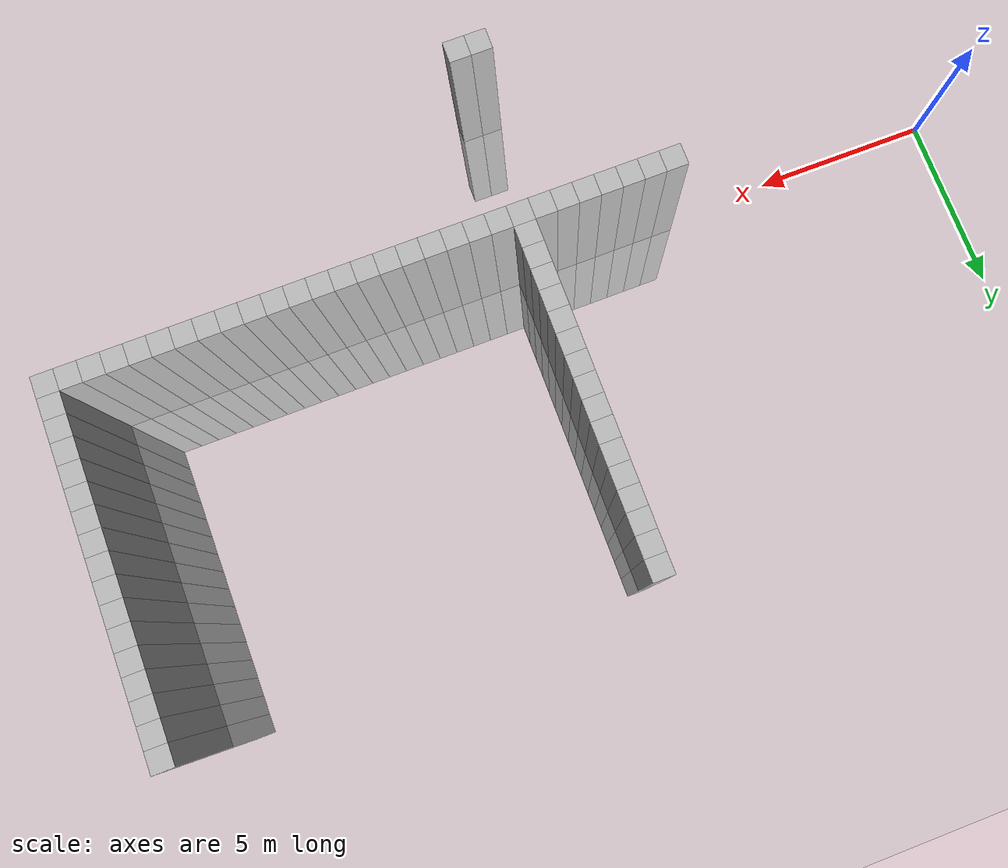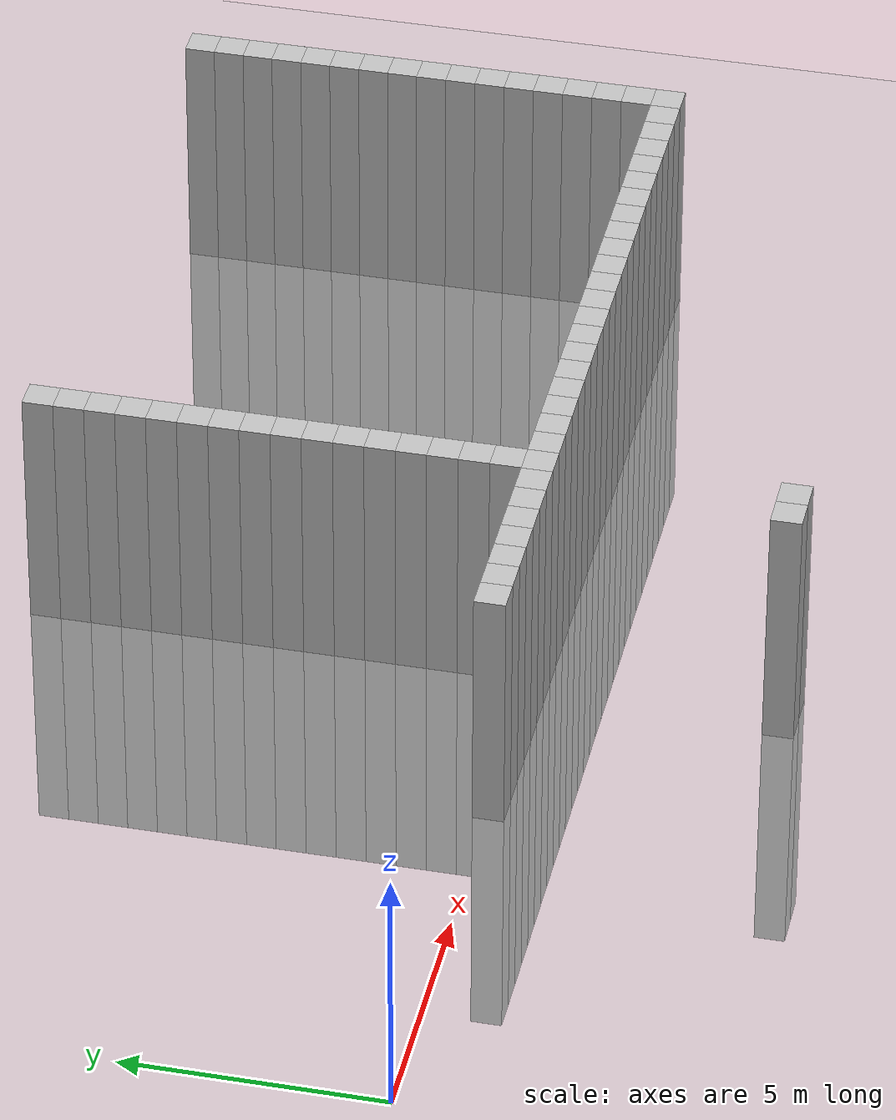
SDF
<sdf version="1.6">
 <world name="default">
  <model name="ground_plane">
   <static>1</static>
   <link name="link">
    <collision name="collision">
     <geometry><plane><normal>0 0 1</normal><size>100 100</size></plane></geometry>
     <surface><friction><ode><mu>100</mu><mu2>50</mu2></ode></friction></surface>
    </collision>
    <visual name="visual">
     <cast_shadows>0</cast_shadows>
     <geometry><plane><normal>0 0 1</normal><size>100 100</size></plane></geometry>
     <material>
      <script><uri>file://media/materials/scripts/gazebo.material</uri><name>Gazebo/Grey</name></script>
     </material>
    </visual>
   </link>
  </model>
  <model name="unit_cylinder_82">
   <static>1</static>
   <pose>8.4 0 0 0 -0 0</pose>
   <link name="link">
    <inertial>
     <mass>1</mass>
     <inertia><ixx>0.145833</ixx><ixy>0</ixy><ixz>0</ixz><iyy>0.145833</iyy><iyz>0</iyz><izz>0.125</izz></inertia>
    </inertial>
    <collision name="collision"><geometry><box><size>0.6 0.6 10</size></box></geometry></collision>
    <visual name="visual">
     <geometry><box><size>0.6 0.6 10</size></box></geometry>
     <material><ambient>0.753 0.753 0.753 1</ambient><diffuse>0.753 0.753 0.753 1</diffuse></material>
     <material>
      <script><name>Gazebo/Grey</name><uri>file://media/materials/scripts/gazebo.material</uri></script>
     </material>
    </visual>
   </link>
  </model>
  <model name="unit_cylinder_85">
   <static>1</static>
   <pose>9 0 0 0 -0 0</pose>
   <link name="link">
    <inertial>
     <mass>1</mass>
     <inertia><ixx>0.145833</ixx><ixy>0</ixy><ixz>0</ixz><iyy>0.145833</iyy><iyz>0</iyz><izz>0.125</izz></inertia>
    </inertial>
    <collision name="collision"><geometry><box><size>0.6 0.6 10</size></box></geometry></collision>
    <visual name="visual">
     <geometry><box><size>0.6 0.6 10</size></box></geometry>
     <material><ambient>0.753 0.753 0.753 1</ambient><diffuse>0.753 0.753 0.753 1</diffuse></material>
     <material>
      <script><name>Gazebo/Grey</name><uri>file://media/materials/scripts/gazebo.material</uri></script>
     </material>
    </visual>
   </link>
  </model>
  <model name="unit_cylinder_88">
   <static>1</static>
   <pose>9.6 0 0 0 -0 0</pose>
   <link name="link">
    <inertial>
     <mass>1</mass>
     <inertia><ixx>0.145833</ixx><ixy>0</ixy><ixz>0</ixz><iyy>0.145833</iyy><iyz>0</iyz><izz>0.125</izz></inertia>
    </inertial>
    <collision name="collision"><geometry><box><size>0.6 0.6 10</size></box></geometry></collision>
    <visual name="visual">
     <geometry><box><size>0.6 0.6 10</size></box></geometry>
     <material><ambient>0.753 0.753 0.753 1</ambient><diffuse>0.753 0.753 0.753 1</diffuse></material>
     <material>
      <script><name>Gazebo/Grey</name><uri>file://media/materials/scripts/gazebo.material</uri></script>
     </material>
    </visual>
   </link>
  </model>
  <model name="unit_cylinder_91">
   <static>1</static>
   <pose>10.2 0 0 0 -0 0</pose>
   <link name="link">
    <inertial>
     <mass>1</mass>
     <inertia><ixx>0.145833</ixx><ixy>0</ixy><ixz>0</ixz><iyy>0.145833</iyy><iyz>0</iyz><izz>0.125</izz></inertia>
    </inertial>
    <collision name="collision"><geometry><box><size>0.6 0.6 10</size></box></geometry></collision>
    <visual name="visual">
     <geometry><box><size>0.6 0.6 10</size></box></geometry>
     <material><ambient>0.753 0.753 0.753 1</ambient><diffuse>0.753 0.753 0.753 1</diffuse></material>
     <material>
      <script><name>Gazebo/Grey</name><uri>file://media/materials/scripts/gazebo.material</uri></script>
     </material>
    </visual>
   </link>
  </model>
  <model name="unit_cylinder_94">
   <static>1</static>
   <pose>10.8 0 0 0 -0 0</pose>
   <link name="link">
    <inertial>
     <mass>1</mass>
     <inertia><ixx>0.145833</ixx><ixy>0</ixy><ixz>0</ixz><iyy>0.145833</iyy><iyz>0</iyz><izz>0.125</izz></inertia>
    </inertial>
    <collision name="collision"><geometry><box><size>0.6 0.6 10</size></box></geometry></collision>
    <visual name="visual">
     <geometry><box><size>0.6 0.6 10</size></box></geometry>
     <material><ambient>0.753 0.753 0.753 1</ambient><diffuse>0.753 0.753 0.753 1</diffuse></material>
     <material>
      <script><name>Gazebo/Grey</name><uri>file://media/materials/scripts/gazebo.material</uri></script>
     </material>
    </visual>
   </link>
  </model>
  <model name="unit_cylinder_97">
   <static>1</static>
   <pose>11.4 0 0 0 -0 0</pose>
   <link name="link">
    <inertial>
     <mass>1</mass>
     <inertia><ixx>0.145833</ixx><ixy>0</ixy><ixz>0</ixz><iyy>0.145833</iyy><iyz>0</iyz><izz>0.125</izz></inertia>
    </inertial>
    <collision name="collision"><geometry><box><size>0.6 0.6 10</size></box></geometry></collision>
    <visual name="visual">
     <geometry><box><size>0.6 0.6 10</size></box></geometry>
     <material><ambient>0.753 0.753 0.753 1</ambient><diffuse>0.753 0.753 0.753 1</diffuse></material>
     <material>
      <script><name>Gazebo/Grey</name><uri>file://media/materials/scripts/gazebo.material</uri></script>
     </material>
    </visual>
   </link>
  </model>
  <model name="unit_cylinder_100">
   <static>1</static>
   <pose>12 0 0 0 -0 0</pose>
   <link name="link">
    <inertial>
     <mass>1</mass>
     <inertia><ixx>0.145833</ixx><ixy>0</ixy><ixz>0</ixz><iyy>0.145833</iyy><iyz>0</iyz><izz>0.125</izz></inertia>
    </inertial>
    <collision name="collision"><geometry><box><size>0.6 0.6 10</size></box></geometry></collision>
    <visual name="visual">
     <geometry><box><size>0.6 0.6 10</size></box></geometry>
     <material><ambient>0.753 0.753 0.753 1</ambient><diffuse>0.753 0.753 0.753 1</diffuse></material>
     <material>
      <script><name>Gazebo/Grey</name><uri>file://media/materials/scripts/gazebo.material</uri></script>
     </material>
    </visual>
   </link>
  </model>
  <model name="unit_cylinder_103">
   <static>1</static>
   <pose>12.6 0 0 0 -0 0</pose>
   <link name="link">
    <inertial>
     <mass>1</mass>
     <inertia><ixx>0.145833</ixx><ixy>0</ixy><ixz>0</ixz><iyy>0.145833</iyy><iyz>0</iyz><izz>0.125</izz></inertia>
    </inertial>
    <collision name="collision"><geometry><box><size>0.6 0.6 10</size></box></geometry></collision>
    <visual name="visual">
     <geometry><box><size>0.6 0.6 10</size></box></geometry>
     <material><ambient>0.753 0.753 0.753 1</ambient><diffuse>0.753 0.753 0.753 1</diffuse></material>
     <material>
      <script><name>Gazebo/Grey</name><uri>file://media/materials/scripts/gazebo.material</uri></script>
     </material>
    </visual>
   </link>
  </model>
  <model name="unit_cylinder_104">
   <static>1</static>
   <pose>12.6 0.6 0 0 -0 0</pose>
   <link name="link">
    <inertial>
     <mass>1</mass>
     <inertia><ixx>0.145833</ixx><ixy>0</ixy><ixz>0</ixz><iyy>0.145833</iyy><iyz>0</iyz><izz>0.125</izz></inertia>
    </inertial>
    <collision name="collision"><geometry><box><size>0.6 0.6 10</size></box></geometry></collision>
    <visual name="visual">
     <geometry><box><size>0.6 0.6 10</size></box></geometry>
     <material><ambient>0.753 0.753 0.753 1</ambient><diffuse>0.753 0.753 0.753 1</diffuse></material>
     <material>
      <script><name>Gazebo/Grey</name><uri>file://media/materials/scripts/gazebo.material</uri></script>
     </material>
    </visual>
   </link>
  </model>
  <model name="unit_cylinder_105">
   <static>1</static>
   <pose>12.6 1.2 0 0 -0 0</pose>
   <link name="link">
    <inertial>
     <mass>1</mass>
     <inertia><ixx>0.145833</ixx><ixy>0</ixy><ixz>0</ixz><iyy>0.145833</iyy><iyz>0</iyz><izz>0.125</izz></inertia>
    </inertial>
    <collision name="collision"><geometry><box><size>0.6 0.6 10</size></box></geometry></collision>
    <visual name="visual">
     <geometry><box><size>0.6 0.6 10</size></box></geometry>
     <material><ambient>0.753 0.753 0.753 1</ambient><diffuse>0.753 0.753 0.753 1</diffuse></material>
     <material>
      <script><name>Gazebo/Grey</name><uri>file://media/materials/scripts/gazebo.material</uri></script>
     </material>
    </visual>
   </link>
  </model>
  <model name="unit_cylinder_106">
   <static>1</static>
   <pose>12.6 1.8 0 0 -0 0</pose>
   <link name="link">
    <inertial>
     <mass>1</mass>
     <inertia><ixx>0.145833</ixx><ixy>0</ixy><ixz>0</ixz><iyy>0.145833</iyy><iyz>0</iyz><izz>0.125</izz></inertia>
    </inertial>
    <collision name="collision"><geometry><box><size>0.6 0.6 10</size></box></geometry></collision>
    <visual name="visual">
     <geometry><box><size>0.6 0.6 10</size></box></geometry>
     <material><ambient>0.753 0.753 0.753 1</ambient><diffuse>0.753 0.753 0.753 1</diffuse></material>
     <material>
      <script><name>Gazebo/Grey</name><uri>file://media/materials/scripts/gazebo.material</uri></script>
     </material>
    </visual>
   </link>
  </model>
  <model name="unit_cylinder_107">
   <static>1</static>
   <pose>12.6 2.4 0 0 -0 0</pose>
   <link name="link">
    <inertial>
     <mass>1</mass>
     <inertia><ixx>0.145833</ixx><ixy>0</ixy><ixz>0</ixz><iyy>0.145833</iyy><iyz>0</iyz><izz>0.125</izz></inertia>
    </inertial>
    <collision name="collision"><geometry><box><size>0.6 0.6 10</size></box></geometry></collision>
    <visual name="visual">
     <geometry><box><size>0.6 0.6 10</size></box></geometry>
     <material><ambient>0.753 0.753 0.753 1</ambient><diffuse>0.753 0.753 0.753 1</diffuse></material>
     <material>
      <script><name>Gazebo/Grey</name><uri>file://media/materials/scripts/gazebo.material</uri></script>
     </material>
    </visual>
   </link>
  </model>
  <model name="unit_cylinder_108">
   <static>1</static>
   <pose>12.6 3 0 0 -0 0</pose>
   <link name="link">
    <inertial>
     <mass>1</mass>
     <inertia><ixx>0.145833</ixx><ixy>0</ixy><ixz>0</ixz><iyy>0.145833</iyy><iyz>0</iyz><izz>0.125</izz></inertia>
    </inertial>
    <collision name="collision"><geometry><box><size>0.6 0.6 10</size></box></geometry></collision>
    <visual name="visual">
     <geometry><box><size>0.6 0.6 10</size></box></geometry>
     <material><ambient>0.753 0.753 0.753 1</ambient><diffuse>0.753 0.753 0.753 1</diffuse></material>
     <material>
      <script><name>Gazebo/Grey</name><uri>file://media/materials/scripts/gazebo.material</uri></script>
     </material>
    </visual>
   </link>
  </model>
  <model name="unit_cylinder_109">
   <static>1</static>
   <pose>12.6 3.6 0 0 -0 0</pose>
   <link name="link">
    <inertial>
     <mass>1</mass>
     <inertia><ixx>0.145833</ixx><ixy>0</ixy><ixz>0</ixz><iyy>0.145833</iyy><iyz>0</iyz><izz>0.125</izz></inertia>
    </inertial>
    <collision name="collision"><geometry><box><size>0.6 0.6 10</size></box></geometry></collision>
    <visual name="visual">
     <geometry><box><size>0.6 0.6 10</size></box></geometry>
     <material><ambient>0.753 0.753 0.753 1</ambient><diffuse>0.753 0.753 0.753 1</diffuse></material>
     <material>
      <script><name>Gazebo/Grey</name><uri>file://media/materials/scripts/gazebo.material</uri></script>
     </material>
    </visual>
   </link>
  </model>
  <model name="unit_cylinder_110">
   <static>1</static>
   <pose>12.6 4.2 0 0 -0 0</pose>
   <link name="link">
    <inertial>
     <mass>1</mass>
     <inertia><ixx>0.145833</ixx><ixy>0</ixy><ixz>0</ixz><iyy>0.145833</iyy><iyz>0</iyz><izz>0.125</izz></inertia>
    </inertial>
    <collision name="collision"><geometry><box><size>0.6 0.6 10</size></box></geometry></collision>
    <visual name="visual">
     <geometry><box><size>0.6 0.6 10</size></box></geometry>
     <material><ambient>0.753 0.753 0.753 1</ambient><diffuse>0.753 0.753 0.753 1</diffuse></material>
     <material>
      <script><name>Gazebo/Grey</name><uri>file://media/materials/scripts/gazebo.material</uri></script>
     </material>
    </visual>
   </link>
  </model>
  <model name="unit_cylinder_111">
   <static>1</static>
   <pose>12.6 4.8 0 0 -0 0</pose>
   <link name="link">
    <inertial>
     <mass>1</mass>
     <inertia><ixx>0.145833</ixx><ixy>0</ixy><ixz>0</ixz><iyy>0.145833</iyy><iyz>0</iyz><izz>0.125</izz></inertia>
    </inertial>
    <collision name="collision"><geometry><box><size>0.6 0.6 10</size></box></geometry></collision>
    <visual name="visual">
     <geometry><box><size>0.6 0.6 10</size></box></geometry>
     <material><ambient>0.753 0.753 0.753 1</ambient><diffuse>0.753 0.753 0.753 1</diffuse></material>
     <material>
      <script><name>Gazebo/Grey</name><uri>file://media/materials/scripts/gazebo.material</uri></script>
     </material>
    </visual>
   </link>
  </model>
  <model name="unit_cylinder_112">
   <static>1</static>
   <pose>12.6 5.4 0 0 -0 0</pose>
   <link name="link">
    <inertial>
     <mass>1</mass>
     <inertia><ixx>0.145833</ixx><ixy>0</ixy><ixz>0</ixz><iyy>0.145833</iyy><iyz>0</iyz><izz>0.125</izz></inertia>
    </inertial>
    <collision name="collision"><geometry><box><size>0.6 0.6 10</size></box></geometry></collision>
    <visual name="visual">
     <geometry><box><size>0.6 0.6 10</size></box></geometry>
     <material><ambient>0.753 0.753 0.753 1</ambient><diffuse>0.753 0.753 0.753 1</diffuse></material>
     <material>
      <script><name>Gazebo/Grey</name><uri>file://media/materials/scripts/gazebo.material</uri></script>
     </material>
    </visual>
   </link>
  </model>
  <model name="unit_cylinder_113">
   <static>1</static>
   <pose>12.6 6 0 0 -0 0</pose>
   <link name="link">
    <inertial>
     <mass>1</mass>
     <inertia><ixx>0.145833</ixx><ixy>0</ixy><ixz>0</ixz><iyy>0.145833</iyy><iyz>0</iyz><izz>0.125</izz></inertia>
    </inertial>
    <collision name="collision"><geometry><box><size>0.6 0.6 10</size></box></geometry></collision>
    <visual name="visual">
     <geometry><box><size>0.6 0.6 10</size></box></geometry>
     <material><ambient>0.753 0.753 0.753 1</ambient><diffuse>0.753 0.753 0.753 1</diffuse></material>
     <material>
      <script><name>Gazebo/Grey</name><uri>file://media/materials/scripts/gazebo.material</uri></script>
     </material>
    </visual>
   </link>
  </model>
  <model name="unit_cylinder_114">
   <static>1</static>
   <pose>12.6 6.6 0 0 -0 0</pose>
   <link name="link">
    <inertial>
     <mass>1</mass>
     <inertia><ixx>0.145833</ixx><ixy>0</ixy><ixz>0</ixz><iyy>0.145833</iyy><iyz>0</iyz><izz>0.125</izz></inertia>
    </inertial>
    <collision name="collision"><geometry><box><size>0.6 0.6 10</size></box></geometry></collision>
    <visual name="visual">
     <geometry><box><size>0.6 0.6 10</size></box></geometry>
     <material><ambient>0.753 0.753 0.753 1</ambient><diffuse>0.753 0.753 0.753 1</diffuse></material>
     <material>
      <script><name>Gazebo/Grey</name><uri>file://media/materials/scripts/gazebo.material</uri></script>
     </material>
    </visual>
   </link>
  </model>
  <model name="unit_cylinder_115">
   <static>1</static>
   <pose>12.6 7.2 0 0 -0 0</pose>
   <link name="link">
    <inertial>
     <mass>1</mass>
     <inertia><ixx>0.145833</ixx><ixy>0</ixy><ixz>0</ixz><iyy>0.145833</iyy><iyz>0</iyz><izz>0.125</izz></inertia>
    </inertial>
    <collision name="collision"><geometry><box><size>0.6 0.6 10</size></box></geometry></collision>
    <visual name="visual">
     <geometry><box><size>0.6 0.6 10</size></box></geometry>
     <material><ambient>0.753 0.753 0.753 1</ambient><diffuse>0.753 0.753 0.753 1</diffuse></material>
     <material>
      <script><name>Gazebo/Grey</name><uri>file://media/materials/scripts/gazebo.material</uri></script>
     </material>
    </visual>
   </link>
  </model>
  <model name="unit_cylinder_116">
   <static>1</static>
   <pose>12.6 7.8 0 0 -0 0</pose>
   <link name="link">
    <inertial>
     <mass>1</mass>
     <inertia><ixx>0.145833</ixx><ixy>0</ixy><ixz>0</ixz><iyy>0.145833</iyy><iyz>0</iyz><izz>0.125</izz></inertia>
    </inertial>
    <collision name="collision"><geometry><box><size>0.6 0.6 10</size></box></geometry></collision>
    <visual name="visual">
     <geometry><box><size>0.6 0.6 10</size></box></geometry>
     <material><ambient>0.753 0.753 0.753 1</ambient><diffuse>0.753 0.753 0.753 1</diffuse></material>
     <material>
      <script><name>Gazebo/Grey</name><uri>file://media/materials/scripts/gazebo.material</uri></script>
     </material>
    </visual>
   </link>
  </model>
  <model name="unit_cylinder_117">
   <static>1</static>
   <pose>12.6 8.4 0 0 -0 0</pose>
   <link name="link">
    <inertial>
     <mass>1</mass>
     <inertia><ixx>0.145833</ixx><ixy>0</ixy><ixz>0</ixz><iyy>0.145833</iyy><iyz>0</iyz><izz>0.125</izz></inertia>
    </inertial>
    <collision name="collision"><geometry><box><size>0.6 0.6 10</size></box></geometry></collision>
    <visual name="visual">
     <geometry><box><size>0.6 0.6 10</size></box></geometry>
     <material><ambient>0.753 0.753 0.753 1</ambient><diffuse>0.753 0.753 0.753 1</diffuse></material>
     <material>
      <script><name>Gazebo/Grey</name><uri>file://media/materials/scripts/gazebo.material</uri></script>
     </material>
    </visual>
   </link>
  </model>
  <model name="unit_cylinder_118">
   <static>1</static>
   <pose>12.6 9 0 0 -0 0</pose>
   <link name="link">
    <inertial>
     <mass>1</mass>
     <inertia><ixx>0.145833</ixx><ixy>0</ixy><ixz>0</ixz><iyy>0.145833</iyy><iyz>0</iyz><izz>0.125</izz></inertia>
    </inertial>
    <collision name="collision"><geometry><box><size>0.6 0.6 10</size></box></geometry></collision>
    <visual name="visual">
     <geometry><box><size>0.6 0.6 10</size></box></geometry>
     <material><ambient>0.753 0.753 0.753 1</ambient><diffuse>0.753 0.753 0.753 1</diffuse></material>
     <material>
      <script><name>Gazebo/Grey</name><uri>file://media/materials/scripts/gazebo.material</uri></script>
     </material>
    </visual>
   </link>
  </model>
  <model name="unit_cylinder_119">
   <static>1</static>
   <pose>12.6 9.6 0 0 -0 0</pose>
   <link name="link">
    <inertial>
     <mass>1</mass>
     <inertia><ixx>0.145833</ixx><ixy>0</ixy><ixz>0</ixz><iyy>0.145833</iyy><iyz>0</iyz><izz>0.125</izz></inertia>
    </inertial>
    <collision name="collision"><geometry><box><size>0.6 0.6 10</size></box></geometry></collision>
    <visual name="visual">
     <geometry><box><size>0.6 0.6 10</size></box></geometry>
     <material><ambient>0.753 0.753 0.753 1</ambient><diffuse>0.753 0.753 0.753 1</diffuse></material>
     <material>
      <script><name>Gazebo/Grey</name><uri>file://media/materials/scripts/gazebo.material</uri></script>
     </material>
    </visual>
   </link>
  </model>
  <model name="unit_cylinder_146">
   <static>1</static>
   <pose>13.2 0 0 0 -0 0</pose>
   <link name="link">
    <inertial>
     <mass>1</mass>
     <inertia><ixx>0.145833</ixx><ixy>0</ixy><ixz>0</ixz><iyy>0.145833</iyy><iyz>0</iyz><izz>0.125</izz></inertia>
    </inertial>
    <collision name="collision"><geometry><box><size>0.6 0.6 10</size></box></geometry></collision>
    <visual name="visual">
     <geometry><box><size>0.6 0.6 10</size></box></geometry>
     <material><ambient>0.753 0.753 0.753 1</ambient><diffuse>0.753 0.753 0.753 1</diffuse></material>
     <material>
      <script><name>Gazebo/Grey</name><uri>file://media/materials/scripts/gazebo.material</uri></script>
     </material>
    </visual>
   </link>
  </model>
  <model name="unit_cylinder_149">
   <static>1</static>
   <pose>13.8 0 0 0 -0 0</pose>
   <link name="link">
    <inertial>
     <mass>1</mass>
     <inertia><ixx>0.145833</ixx><ixy>0</ixy><ixz>0</ixz><iyy>0.145833</iyy><iyz>0</iyz><izz>0.125</izz></inertia>
    </inertial>
    <collision name="collision"><geometry><box><size>0.6 0.6 10</size></box></geometry></collision>
    <visual name="visual">
     <geometry><box><size>0.6 0.6 10</size></box></geometry>
     <material><ambient>0.753 0.753 0.753 1</ambient><diffuse>0.753 0.753 0.753 1</diffuse></material>
     <material>
      <script><name>Gazebo/Grey</name><uri>file://media/materials/scripts/gazebo.material</uri></script>
     </material>
    </visual>
   </link>
  </model>
  <model name="unit_cylinder_152">
   <static>1</static>
   <pose>14.4 0 0 0 -0 0</pose>
   <link name="link">
    <inertial>
     <mass>1</mass>
     <inertia><ixx>0.145833</ixx><ixy>0</ixy><ixz>0</ixz><iyy>0.145833</iyy><iyz>0</iyz><izz>0.125</izz></inertia>
    </inertial>
    <collision name="collision"><geometry><box><size>0.6 0.6 10</size></box></geometry></collision>
    <visual name="visual">
     <geometry><box><size>0.6 0.6 10</size></box></geometry>
     <material><ambient>0.753 0.753 0.753 1</ambient><diffuse>0.753 0.753 0.753 1</diffuse></material>
     <material>
      <script><name>Gazebo/Grey</name><uri>file://media/materials/scripts/gazebo.material</uri></script>
     </material>
    </visual>
   </link>
  </model>
  <model name="unit_cylinder_155">
   <static>1</static>
   <pose>15 0 0 0 -0 0</pose>
   <link name="link">
    <inertial>
     <mass>1</mass>
     <inertia><ixx>0.145833</ixx><ixy>0</ixy><ixz>0</ixz><iyy>0.145833</iyy><iyz>0</iyz><izz>0.125</izz></inertia>
    </inertial>
    <collision name="collision"><geometry><box><size>0.6 0.6 10</size></box></geometry></collision>
    <visual name="visual">
     <geometry><box><size>0.6 0.6 10</size></box></geometry>
     <material><ambient>0.753 0.753 0.753 1</ambient><diffuse>0.753 0.753 0.753 1</diffuse></material>
     <material>
      <script><name>Gazebo/Grey</name><uri>file://media/materials/scripts/gazebo.material</uri></script>
     </material>
    </visual>
   </link>
  </model>
  <model name="unit_cylinder_158">
   <static>1</static>
   <pose>15.6 0 0 0 -0 0</pose>
   <link name="link">
    <inertial>
     <mass>1</mass>
     <inertia><ixx>0.145833</ixx><ixy>0</ixy><ixz>0</ixz><iyy>0.145833</iyy><iyz>0</iyz><izz>0.125</izz></inertia>
    </inertial>
    <collision name="collision"><geometry><box><size>0.6 0.6 10</size></box></geometry></collision>
    <visual name="visual">
     <geometry><box><size>0.6 0.6 10</size></box></geometry>
     <material><ambient>0.753 0.753 0.753 1</ambient><diffuse>0.753 0.753 0.753 1</diffuse></material>
     <material>
      <script><name>Gazebo/Grey</name><uri>file://media/materials/scripts/gazebo.material</uri></script>
     </material>
    </visual>
   </link>
  </model>
  <model name="unit_cylinder_161">
   <static>1</static>
   <pose>16.2 0 0 0 -0 0</pose>
   <link name="link">
    <inertial>
     <mass>1</mass>
     <inertia><ixx>0.145833</ixx><ixy>0</ixy><ixz>0</ixz><iyy>0.145833</iyy><iyz>0</iyz><izz>0.125</izz></inertia>
    </inertial>
    <collision name="collision"><geometry><box><size>0.6 0.6 10</size></box></geometry></collision>
    <visual name="visual">
     <geometry><box><size>0.6 0.6 10</size></box></geometry>
     <material><ambient>0.753 0.753 0.753 1</ambient><diffuse>0.753 0.753 0.753 1</diffuse></material>
     <material>
      <script><name>Gazebo/Grey</name><uri>file://media/materials/scripts/gazebo.material</uri></script>
     </material>
    </visual>
   </link>
  </model>
  <model name="unit_cylinder_164">
   <static>1</static>
   <pose>16.8 0 0 0 -0 0</pose>
   <link name="link">
    <inertial>
     <mass>1</mass>
     <inertia><ixx>0.145833</ixx><ixy>0</ixy><ixz>0</ixz><iyy>0.145833</iyy><iyz>0</iyz><izz>0.125</izz></inertia>
    </inertial>
    <collision name="collision"><geometry><box><size>0.6 0.6 10</size></box></geometry></collision>
    <visual name="visual">
     <geometry><box><size>0.6 0.6 10</size></box></geometry>
     <material><ambient>0.753 0.753 0.753 1</ambient><diffuse>0.753 0.753 0.753 1</diffuse></material>
     <material>
      <script><name>Gazebo/Grey</name><uri>file://media/materials/scripts/gazebo.material</uri></script>
     </material>
    </visual>
   </link>
  </model>
  <model name="unit_cylinder_167">
   <static>1</static>
   <pose>17.4 0 0 0 -0 0</pose>
   <link name="link">
    <inertial>
     <mass>1</mass>
     <inertia><ixx>0.145833</ixx><ixy>0</ixy><ixz>0</ixz><iyy>0.145833</iyy><iyz>0</iyz><izz>0.125</izz></inertia>
    </inertial>
    <collision name="collision"><geometry><box><size>0.6 0.6 10</size></box></geometry></collision>
    <visual name="visual">
     <geometry><box><size>0.6 0.6 10</size></box></geometry>
     <material><ambient>0.753 0.753 0.753 1</ambient><diffuse>0.753 0.753 0.753 1</diffuse></material>
     <material>
      <script><name>Gazebo/Grey</name><uri>file://media/materials/scripts/gazebo.material</uri></script>
     </material>
    </visual>
   </link>
  </model>
  <model name="unit_cylinder_170">
   <static>1</static>
   <pose>18 0 0 0 -0 0</pose>
   <link name="link">
    <inertial>
     <mass>1</mass>
     <inertia><ixx>0.145833</ixx><ixy>0</ixy><ixz>0</ixz><iyy>0.145833</iyy><iyz>0</iyz><izz>0.125</izz></inertia>
    </inertial>
    <collision name="collision"><geometry><box><size>0.6 0.6 10</size></box></geometry></collision>
    <visual name="visual">
     <geometry><box><size>0.6 0.6 10</size></box></geometry>
     <material><ambient>0.753 0.753 0.753 1</ambient><diffuse>0.753 0.753 0.753 1</diffuse></material>
     <material>
      <script><name>Gazebo/Grey</name><uri>file://media/materials/scripts/gazebo.material</uri></script>
     </material>
    </visual>
   </link>
  </model>
  <model name="unit_cylinder_173">
   <static>1</static>
   <pose>18.6 0 0 0 -0 0</pose>
   <link name="link">
    <inertial>
     <mass>1</mass>
     <inertia><ixx>0.145833</ixx><ixy>0</ixy><ixz>0</ixz><iyy>0.145833</iyy><iyz>0</iyz><izz>0.125</izz></inertia>
    </inertial>
    <collision name="collision"><geometry><box><size>0.6 0.6 10</size></box></geometry></collision>
    <visual name="visual">
     <geometry><box><size>0.6 0.6 10</size></box></geometry>
     <material><ambient>0.753 0.753 0.753 1</ambient><diffuse>0.753 0.753 0.753 1</diffuse></material>
     <material>
      <script><name>Gazebo/Grey</name><uri>file://media/materials/scripts/gazebo.material</uri></script>
     </material>
    </visual>
   </link>
  </model>
  <model name="unit_cylinder_176">
   <static>1</static>
   <pose>19.2 0 0 0 -0 0</pose>
   <link name="link">
    <inertial>
     <mass>1</mass>
     <inertia><ixx>0.145833</ixx><ixy>0</ixy><ixz>0</ixz><iyy>0.145833</iyy><iyz>0</iyz><izz>0.125</izz></inertia>
    </inertial>
    <collision name="collision"><geometry><box><size>0.6 0.6 10</size></box></geometry></collision>
    <visual name="visual">
     <geometry><box><size>0.6 0.6 10</size></box></geometry>
     <material><ambient>0.753 0.753 0.753 1</ambient><diffuse>0.753 0.753 0.753 1</diffuse></material>
     <material>
      <script><name>Gazebo/Grey</name><uri>file://media/materials/scripts/gazebo.material</uri></script>
     </material>
    </visual>
   </link>
  </model>
  <model name="unit_cylinder_179">
   <static>1</static>
   <pose>19.8 0 0 0 -0 0</pose>
   <link name="link">
    <inertial>
     <mass>1</mass>
     <inertia><ixx>0.145833</ixx><ixy>0</ixy><ixz>0</ixz><iyy>0.145833</iyy><iyz>0</iyz><izz>0.125</izz></inertia>
    </inertial>
    <collision name="collision"><geometry><box><size>0.6 0.6 10</size></box></geometry></collision>
    <visual name="visual">
     <geometry><box><size>0.6 0.6 10</size></box></geometry>
     <material><ambient>0.753 0.753 0.753 1</ambient><diffuse>0.753 0.753 0.753 1</diffuse></material>
     <material>
      <script><name>Gazebo/Grey</name><uri>file://media/materials/scripts/gazebo.material</uri></script>
     </material>
    </visual>
   </link>
  </model>
  <model name="unit_cylinder_182">
   <static>1</static>
   <pose>20.4 0 0 0 -0 0</pose>
   <link name="link">
    <inertial>
     <mass>1</mass>
     <inertia><ixx>0.145833</ixx><ixy>0</ixy><ixz>0</ixz><iyy>0.145833</iyy><iyz>0</iyz><izz>0.125</izz></inertia>
    </inertial>
    <collision name="collision"><geometry><box><size>0.6 0.6 10</size></box></geometry></collision>
    <visual name="visual">
     <geometry><box><size>0.6 0.6 10</size></box></geometry>
     <material><ambient>0.753 0.753 0.753 1</ambient><diffuse>0.753 0.753 0.753 1</diffuse></material>
     <material>
      <script><name>Gazebo/Grey</name><uri>file://media/materials/scripts/gazebo.material</uri></script>
     </material>
    </visual>
   </link>
  </model>
  <model name="unit_cylinder_185">
   <static>1</static>
   <pose>21 0 0 0 -0 0</pose>
   <link name="link">
    <inertial>
     <mass>1</mass>
     <inertia><ixx>0.145833</ixx><ixy>0</ixy><ixz>0</ixz><iyy>0.145833</iyy><iyz>0</iyz><izz>0.125</izz></inertia>
    </inertial>
    <collision name="collision"><geometry><box><size>0.6 0.6 10</size></box></geometry></collision>
    <visual name="visual">
     <geometry><box><size>0.6 0.6 10</size></box></geometry>
     <material><ambient>0.753 0.753 0.753 1</ambient><diffuse>0.753 0.753 0.753 1</diffuse></material>
     <material>
      <script><name>Gazebo/Grey</name><uri>file://media/materials/scripts/gazebo.material</uri></script>
     </material>
    </visual>
   </link>
  </model>
  <model name="unit_cylinder_188">
   <static>1</static>
   <pose>21.6 0 0 0 -0 0</pose>
   <link name="link">
    <inertial>
     <mass>1</mass>
     <inertia><ixx>0.145833</ixx><ixy>0</ixy><ixz>0</ixz><iyy>0.145833</iyy><iyz>0</iyz><izz>0.125</izz></inertia>
    </inertial>
    <collision name="collision"><geometry><box><size>0.6 0.6 10</size></box></geometry></collision>
    <visual name="visual">
     <geometry><box><size>0.6 0.6 10</size></box></geometry>
     <material><ambient>0.753 0.753 0.753 1</ambient><diffuse>0.753 0.753 0.753 1</diffuse></material>
     <material>
      <script><name>Gazebo/Grey</name><uri>file://media/materials/scripts/gazebo.material</uri></script>
     </material>
    </visual>
   </link>
  </model>
  <model name="unit_cylinder_191">
   <static>1</static>
   <pose>22.2 0 0 0 -0 0</pose>
   <link name="link">
    <inertial>
     <mass>1</mass>
     <inertia><ixx>0.145833</ixx><ixy>0</ixy><ixz>0</ixz><iyy>0.145833</iyy><iyz>0</iyz><izz>0.125</izz></inertia>
    </inertial>
    <collision name="collision"><geometry><box><size>0.6 0.6 10</size></box></geometry></collision>
    <visual name="visual">
     <geometry><box><size>0.6 0.6 10</size></box></geometry>
     <material><ambient>0.753 0.753 0.753 1</ambient><diffuse>0.753 0.753 0.753 1</diffuse></material>
     <material>
      <script><name>Gazebo/Grey</name><uri>file://media/materials/scripts/gazebo.material</uri></script>
     </material>
    </visual>
   </link>
  </model>
  <model name="unit_cylinder_194">
   <static>1</static>
   <pose>22.8 0 0 0 -0 0</pose>
   <link name="link">
    <inertial>
     <mass>1</mass>
     <inertia><ixx>0.145833</ixx><ixy>0</ixy><ixz>0</ixz><iyy>0.145833</iyy><iyz>0</iyz><izz>0.125</izz></inertia>
    </inertial>
    <collision name="collision"><geometry><box><size>0.6 0.6 10</size></box></geometry></collision>
    <visual name="visual">
     <geometry><box><size>0.6 0.6 10</size></box></geometry>
     <material><ambient>0.753 0.753 0.753 1</ambient><diffuse>0.753 0.753 0.753 1</diffuse></material>
     <material>
      <script><name>Gazebo/Grey</name><uri>file://media/materials/scripts/gazebo.material</uri></script>
     </material>
    </visual>
   </link>
  </model>
  <model name="unit_cylinder_197">
   <static>1</static>
   <pose>23.4 0 0 0 -0 0</pose>
   <link name="link">
    <inertial>
     <mass>1</mass>
     <inertia><ixx>0.145833</ixx><ixy>0</ixy><ixz>0</ixz><iyy>0.145833</iyy><iyz>0</iyz><izz>0.125</izz></inertia>
    </inertial>
    <collision name="collision"><geometry><box><size>0.6 0.6 10</size></box></geometry></collision>
    <visual name="visual">
     <geometry><box><size>0.6 0.6 10</size></box></geometry>
     <material><ambient>0.753 0.753 0.753 1</ambient><diffuse>0.753 0.753 0.753 1</diffuse></material>
     <material>
      <script><name>Gazebo/Grey</name><uri>file://media/materials/scripts/gazebo.material</uri></script>
     </material>
    </visual>
   </link>
  </model>
  <model name="unit_cylinder_200">
   <static>1</static>
   <pose>24 0 0 0 -0 0</pose>
   <link name="link">
    <inertial>
     <mass>1</mass>
     <inertia><ixx>0.145833</ixx><ixy>0</ixy><ixz>0</ixz><iyy>0.145833</iyy><iyz>0</iyz><izz>0.125</izz></inertia>
    </inertial>
    <collision name="collision"><geometry><box><size>0.6 0.6 10</size></box></geometry></collision>
    <visual name="visual">
     <geometry><box><size>0.6 0.6 10</size></box></geometry>
     <material><ambient>0.753 0.753 0.753 1</ambient><diffuse>0.753 0.753 0.753 1</diffuse></material>
     <material>
      <script><name>Gazebo/Grey</name><uri>file://media/materials/scripts/gazebo.material</uri></script>
     </material>
    </visual>
   </link>
  </model>
  <model name="unit_cylinder_203">
   <static>1</static>
   <pose>24.6 0 0 0 -0 0</pose>
   <link name="link">
    <inertial>
     <mass>1</mass>
     <inertia><ixx>0.145833</ixx><ixy>0</ixy><ixz>0</ixz><iyy>0.145833</iyy><iyz>0</iyz><izz>0.125</izz></inertia>
    </inertial>
    <collision name="collision"><geometry><box><size>0.6 0.6 10</size></box></geometry></collision>
    <visual name="visual">
     <geometry><box><size>0.6 0.6 10</size></box></geometry>
     <material><ambient>0.753 0.753 0.753 1</ambient><diffuse>0.753 0.753 0.753 1</diffuse></material>
     <material>
      <script><name>Gazebo/Grey</name><uri>file://media/materials/scripts/gazebo.material</uri></script>
     </material>
    </visual>
   </link>
  </model>
  <model name="unit_cylinder_206">
   <static>1</static>
   <pose>25.2 0 0 0 -0 0</pose>
   <link name="link">
    <inertial>
     <mass>1</mass>
     <inertia><ixx>0.145833</ixx><ixy>0</ixy><ixz>0</ixz><iyy>0.145833</iyy><iyz>0</iyz><izz>0.125</izz></inertia>
    </inertial>
    <collision name="collision"><geometry><box><size>0.6 0.6 10</size></box></geometry></collision>
    <visual name="visual">
     <geometry><box><size>0.6 0.6 10</size></box></geometry>
     <material><ambient>0.753 0.753 0.753 1</ambient><diffuse>0.753 0.753 0.753 1</diffuse></material>
     <material>
      <script><name>Gazebo/Grey</name><uri>file://media/materials/scripts/gazebo.material</uri></script>
     </material>
    </visual>
   </link>
  </model>
  <model name="unit_cylinder_207">
   <static>1</static>
   <pose>25.2 0.6 0 0 -0 0</pose>
   <link name="link">
    <inertial>
     <mass>1</mass>
     <inertia><ixx>0.145833</ixx><ixy>0</ixy><ixz>0</ixz><iyy>0.145833</iyy><iyz>0</iyz><izz>0.125</izz></inertia>
    </inertial>
    <collision name="collision"><geometry><box><size>0.6 0.6 10</size></box></geometry></collision>
    <visual name="visual">
     <geometry><box><size>0.6 0.6 10</size></box></geometry>
     <material><ambient>0.753 0.753 0.753 1</ambient><diffuse>0.753 0.753 0.753 1</diffuse></material>
     <material>
      <script><name>Gazebo/Grey</name><uri>file://media/materials/scripts/gazebo.material</uri></script>
     </material>
    </visual>
   </link>
  </model>
  <model name="unit_cylinder_208">
   <static>1</static>
   <pose>25.2 1.2 0 0 -0 0</pose>
   <link name="link">
    <inertial>
     <mass>1</mass>
     <inertia><ixx>0.145833</ixx><ixy>0</ixy><ixz>0</ixz><iyy>0.145833</iyy><iyz>0</iyz><izz>0.125</izz></inertia>
    </inertial>
    <collision name="collision"><geometry><box><size>0.6 0.6 10</size></box></geometry></collision>
    <visual name="visual">
     <geometry><box><size>0.6 0.6 10</size></box></geometry>
     <material><ambient>0.753 0.753 0.753 1</ambient><diffuse>0.753 0.753 0.753 1</diffuse></material>
     <material>
      <script><name>Gazebo/Grey</name><uri>file://media/materials/scripts/gazebo.material</uri></script>
     </material>
    </visual>
   </link>
  </model>
  <model name="unit_cylinder_209">
   <static>1</static>
   <pose>25.2 1.8 0 0 -0 0</pose>
   <link name="link">
    <inertial>
     <mass>1</mass>
     <inertia><ixx>0.145833</ixx><ixy>0</ixy><ixz>0</ixz><iyy>0.145833</iyy><iyz>0</iyz><izz>0.125</izz></inertia>
    </inertial>
    <collision name="collision"><geometry><box><size>0.6 0.6 10</size></box></geometry></collision>
    <visual name="visual">
     <geometry><box><size>0.6 0.6 10</size></box></geometry>
     <material><ambient>0.753 0.753 0.753 1</ambient><diffuse>0.753 0.753 0.753 1</diffuse></material>
     <material>
      <script><name>Gazebo/Grey</name><uri>file://media/materials/scripts/gazebo.material</uri></script>
     </material>
    </visual>
   </link>
  </model>
  <model name="unit_cylinder_210">
   <static>1</static>
   <pose>25.2 2.4 0 0 -0 0</pose>
   <link name="link">
    <inertial>
     <mass>1</mass>
     <inertia><ixx>0.145833</ixx><ixy>0</ixy><ixz>0</ixz><iyy>0.145833</iyy><iyz>0</iyz><izz>0.125</izz></inertia>
    </inertial>
    <collision name="collision"><geometry><box><size>0.6 0.6 10</size></box></geometry></collision>
    <visual name="visual">
     <geometry><box><size>0.6 0.6 10</size></box></geometry>
     <material><ambient>0.753 0.753 0.753 1</ambient><diffuse>0.753 0.753 0.753 1</diffuse></material>
     <material>
      <script><name>Gazebo/Grey</name><uri>file://media/materials/scripts/gazebo.material</uri></script>
     </material>
    </visual>
   </link>
  </model>
  <model name="unit_cylinder_211">
   <static>1</static>
   <pose>25.2 3 0 0 -0 0</pose>
   <link name="link">
    <inertial>
     <mass>1</mass>
     <inertia><ixx>0.145833</ixx><ixy>0</ixy><ixz>0</ixz><iyy>0.145833</iyy><iyz>0</iyz><izz>0.125</izz></inertia>
    </inertial>
    <collision name="collision"><geometry><box><size>0.6 0.6 10</size></box></geometry></collision>
    <visual name="visual">
     <geometry><box><size>0.6 0.6 10</size></box></geometry>
     <material><ambient>0.753 0.753 0.753 1</ambient><diffuse>0.753 0.753 0.753 1</diffuse></material>
     <material>
      <script><name>Gazebo/Grey</name><uri>file://media/materials/scripts/gazebo.material</uri></script>
     </material>
    </visual>
   </link>
  </model>
  <model name="unit_cylinder_212">
   <static>1</static>
   <pose>25.2 3.6 0 0 -0 0</pose>
   <link name="link">
    <inertial>
     <mass>1</mass>
     <inertia><ixx>0.145833</ixx><ixy>0</ixy><ixz>0</ixz><iyy>0.145833</iyy><iyz>0</iyz><izz>0.125</izz></inertia>
    </inertial>
    <collision name="collision"><geometry><box><size>0.6 0.6 10</size></box></geometry></collision>
    <visual name="visual">
     <geometry><box><size>0.6 0.6 10</size></box></geometry>
     <material><ambient>0.753 0.753 0.753 1</ambient><diffuse>0.753 0.753 0.753 1</diffuse></material>
     <material>
      <script><name>Gazebo/Grey</name><uri>file://media/materials/scripts/gazebo.material</uri></script>
     </material>
    </visual>
   </link>
  </model>
  <model name="unit_cylinder_213">
   <static>1</static>
   <pose>25.2 4.2 0 0 -0 0</pose>
   <link name="link">
    <inertial>
     <mass>1</mass>
     <inertia><ixx>0.145833</ixx><ixy>0</ixy><ixz>0</ixz><iyy>0.145833</iyy><iyz>0</iyz><izz>0.125</izz></inertia>
    </inertial>
    <collision name="collision"><geometry><box><size>0.6 0.6 10</size></box></geometry></collision>
    <visual name="visual">
     <geometry><box><size>0.6 0.6 10</size></box></geometry>
     <material><ambient>0.753 0.753 0.753 1</ambient><diffuse>0.753 0.753 0.753 1</diffuse></material>
     <material>
      <script><name>Gazebo/Grey</name><uri>file://media/materials/scripts/gazebo.material</uri></script>
     </material>
    </visual>
   </link>
  </model>
  <model name="unit_cylinder_214">
   <static>1</static>
   <pose>25.2 4.8 0 0 -0 0</pose>
   <link name="link">
    <inertial>
     <mass>1</mass>
     <inertia><ixx>0.145833</ixx><ixy>0</ixy><ixz>0</ixz><iyy>0.145833</iyy><iyz>0</iyz><izz>0.125</izz></inertia>
    </inertial>
    <collision name="collision"><geometry><box><size>0.6 0.6 10</size></box></geometry></collision>
    <visual name="visual">
     <geometry><box><size>0.6 0.6 10</size></box></geometry>
     <material><ambient>0.753 0.753 0.753 1</ambient><diffuse>0.753 0.753 0.753 1</diffuse></material>
     <material>
      <script><name>Gazebo/Grey</name><uri>file://media/materials/scripts/gazebo.material</uri></script>
     </material>
    </visual>
   </link>
  </model>
  <model name="unit_cylinder_215">
   <static>1</static>
   <pose>25.2 5.4 0 0 -0 0</pose>
   <link name="link">
    <inertial>
     <mass>1</mass>
     <inertia><ixx>0.145833</ixx><ixy>0</ixy><ixz>0</ixz><iyy>0.145833</iyy><iyz>0</iyz><izz>0.125</izz></inertia>
    </inertial>
    <collision name="collision"><geometry><box><size>0.6 0.6 10</size></box></geometry></collision>
    <visual name="visual">
     <geometry><box><size>0.6 0.6 10</size></box></geometry>
     <material><ambient>0.753 0.753 0.753 1</ambient><diffuse>0.753 0.753 0.753 1</diffuse></material>
     <material>
      <script><name>Gazebo/Grey</name><uri>file://media/materials/scripts/gazebo.material</uri></script>
     </material>
    </visual>
   </link>
  </model>
  <model name="unit_cylinder_216">
   <static>1</static>
   <pose>25.2 6 0 0 -0 0</pose>
   <link name="link">
    <inertial>
     <mass>1</mass>
     <inertia><ixx>0.145833</ixx><ixy>0</ixy><ixz>0</ixz><iyy>0.145833</iyy><iyz>0</iyz><izz>0.125</izz></inertia>
    </inertial>
    <collision name="collision"><geometry><box><size>0.6 0.6 10</size></box></geometry></collision>
    <visual name="visual">
     <geometry><box><size>0.6 0.6 10</size></box></geometry>
     <material><ambient>0.753 0.753 0.753 1</ambient><diffuse>0.753 0.753 0.753 1</diffuse></material>
     <material>
      <script><name>Gazebo/Grey</name><uri>file://media/materials/scripts/gazebo.material</uri></script>
     </material>
    </visual>
   </link>
  </model>
  <model name="unit_cylinder_217">
   <static>1</static>
   <pose>25.2 6.6 0 0 -0 0</pose>
   <link name="link">
    <inertial>
     <mass>1</mass>
     <inertia><ixx>0.145833</ixx><ixy>0</ixy><ixz>0</ixz><iyy>0.145833</iyy><iyz>0</iyz><izz>0.125</izz></inertia>
    </inertial>
    <collision name="collision"><geometry><box><size>0.6 0.6 10</size></box></geometry></collision>
    <visual name="visual">
     <geometry><box><size>0.6 0.6 10</size></box></geometry>
     <material><ambient>0.753 0.753 0.753 1</ambient><diffuse>0.753 0.753 0.753 1</diffuse></material>
     <material>
      <script><name>Gazebo/Grey</name><uri>file://media/materials/scripts/gazebo.material</uri></script>
     </material>
    </visual>
   </link>
  </model>
  <model name="unit_cylinder_218">
   <static>1</static>
   <pose>25.2 7.2 0 0 -0 0</pose>
   <link name="link">
    <inertial>
     <mass>1</mass>
     <inertia><ixx>0.145833</ixx><ixy>0</ixy><ixz>0</ixz><iyy>0.145833</iyy><iyz>0</iyz><izz>0.125</izz></inertia>
    </inertial>
    <collision name="collision"><geometry><box><size>0.6 0.6 10</size></box></geometry></collision>
    <visual name="visual">
     <geometry><box><size>0.6 0.6 10</size></box></geometry>
     <material><ambient>0.753 0.753 0.753 1</ambient><diffuse>0.753 0.753 0.753 1</diffuse></material>
     <material>
      <script><name>Gazebo/Grey</name><uri>file://media/materials/scripts/gazebo.material</uri></script>
     </material>
    </visual>
   </link>
  </model>
  <model name="unit_cylinder_219">
   <static>1</static>
   <pose>25.2 7.8 0 0 -0 0</pose>
   <link name="link">
    <inertial>
     <mass>1</mass>
     <inertia><ixx>0.145833</ixx><ixy>0</ixy><ixz>0</ixz><iyy>0.145833</iyy><iyz>0</iyz><izz>0.125</izz></inertia>
    </inertial>
    <collision name="collision"><geometry><box><size>0.6 0.6 10</size></box></geometry></collision>
    <visual name="visual">
     <geometry><box><size>0.6 0.6 10</size></box></geometry>
     <material><ambient>0.753 0.753 0.753 1</ambient><diffuse>0.753 0.753 0.753 1</diffuse></material>
     <material>
      <script><name>Gazebo/Grey</name><uri>file://media/materials/scripts/gazebo.material</uri></script>
     </material>
    </visual>
   </link>
  </model>
  <model name="unit_cylinder_220">
   <static>1</static>
   <pose>25.2 8.4 0 0 -0 0</pose>
   <link name="link">
    <inertial>
     <mass>1</mass>
     <inertia><ixx>0.145833</ixx><ixy>0</ixy><ixz>0</ixz><iyy>0.145833</iyy><iyz>0</iyz><izz>0.125</izz></inertia>
    </inertial>
    <collision name="collision"><geometry><box><size>0.6 0.6 10</size></box></geometry></collision>
    <visual name="visual">
     <geometry><box><size>0.6 0.6 10</size></box></geometry>
     <material><ambient>0.753 0.753 0.753 1</ambient><diffuse>0.753 0.753 0.753 1</diffuse></material>
     <material>
      <script><name>Gazebo/Grey</name><uri>file://media/materials/scripts/gazebo.material</uri></script>
     </material>
    </visual>
   </link>
  </model>
  <model name="unit_cylinder_221">
   <static>1</static>
   <pose>25.2 9 0 0 -0 0</pose>
   <link name="link">
    <inertial>
     <mass>1</mass>
     <inertia><ixx>0.145833</ixx><ixy>0</ixy><ixz>0</ixz><iyy>0.145833</iyy><iyz>0</iyz><izz>0.125</izz></inertia>
    </inertial>
    <collision name="collision"><geometry><box><size>0.6 0.6 10</size></box></geometry></collision>
    <visual name="visual">
     <geometry><box><size>0.6 0.6 10</size></box></geometry>
     <material><ambient>0.753 0.753 0.753 1</ambient><diffuse>0.753 0.753 0.753 1</diffuse></material>
     <material>
      <script><name>Gazebo/Grey</name><uri>file://media/materials/scripts/gazebo.material</uri></script>
     </material>
    </visual>
   </link>
  </model>
  <model name="unit_cylinder_222">
   <static>1</static>
   <pose>25.2 9.6 0 0 -0 0</pose>
   <link name="link">
    <inertial>
     <mass>1</mass>
     <inertia><ixx>0.145833</ixx><ixy>0</ixy><ixz>0</ixz><iyy>0.145833</iyy><iyz>0</iyz><izz>0.125</izz></inertia>
    </inertial>
    <collision name="collision"><geometry><box><size>0.6 0.6 10</size></box></geometry></collision>
    <visual name="visual">
     <geometry><box><size>0.6 0.6 10</size></box></geometry>
     <material><ambient>0.753 0.753 0.753 1</ambient><diffuse>0.753 0.753 0.753 1</diffuse></material>
     <material>
      <script><name>Gazebo/Grey</name><uri>file://media/materials/scripts/gazebo.material</uri></script>
     </material>
    </visual>
   </link>
  </model>
  <model name="unit_cylinder_789">
   <static>1</static>
   <pose>12 -4.8 0 0 -0 0</pose>
   <link name="link">
    <inertial>
     <mass>1</mass>
     <inertia><ixx>0.145833</ixx><ixy>0</ixy><ixz>0</ixz><iyy>0.145833</iyy><iyz>0</iyz><izz>0.125</izz></inertia>
    </inertial>
    <collision name="collision"><geometry><box><size>0.6 0.6 10</size></box></geometry></collision>
    <visual name="visual">
     <geometry><box><size>0.6 0.6 10</size></box></geometry>
     <material><ambient>0.753 0.753 0.753 1</ambient><diffuse>0.753 0.753 0.753 1</diffuse></material>
     <material>
      <script><name>Gazebo/Grey</name><uri>file://media/materials/scripts/gazebo.material</uri></script>
     </material>
    </visual>
   </link>
  </model>
  <model name="unit_cylinder_832">
   <static>1</static>
   <pose>12.6 -4.8 0 0 -0 0</pose>
   <link name="link">
    <inertial>
     <mass>1</mass>
     <inertia><ixx>0.145833</ixx><ixy>0</ixy><ixz>0</ixz><iyy>0.145833</iyy><iyz>0</iyz><izz>0.125</izz></inertia>
    </inertial>
    <collision name="collision"><geometry><box><size>0.6 0.6 10</size></box></geometry></collision>
    <visual name="visual">
     <geometry><box><size>0.6 0.6 10</size></box></geometry>
     <material><ambient>0.753 0.753 0.753 1</ambient><diffuse>0.753 0.753 0.753 1</diffuse></material>
     <material>
      <script><name>Gazebo/Grey</name><uri>file://media/materials/scripts/gazebo.material</uri></script>
     </material>
    </visual>
   </link>
  </model>
 </world>
</sdf>
